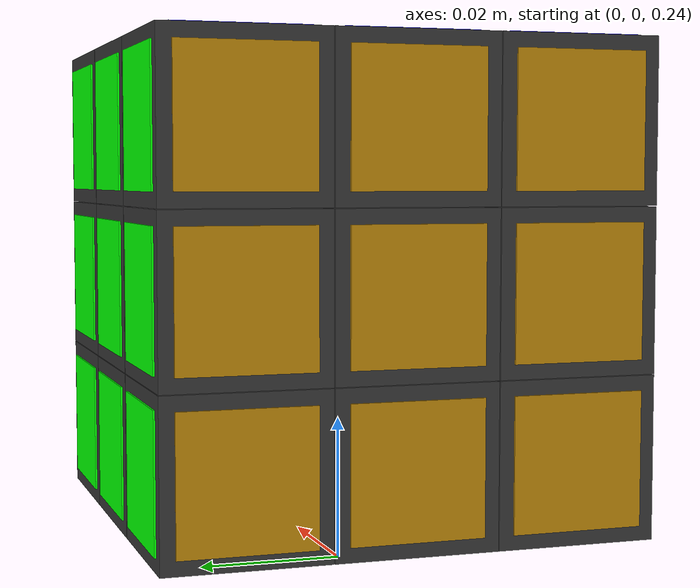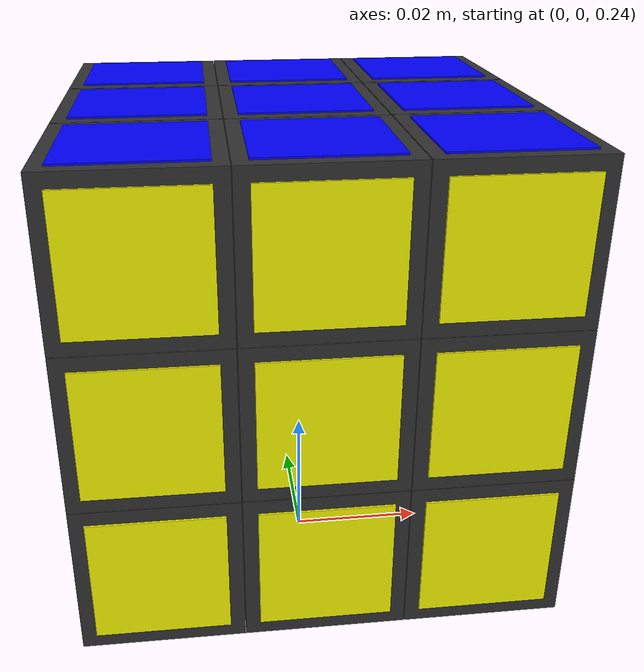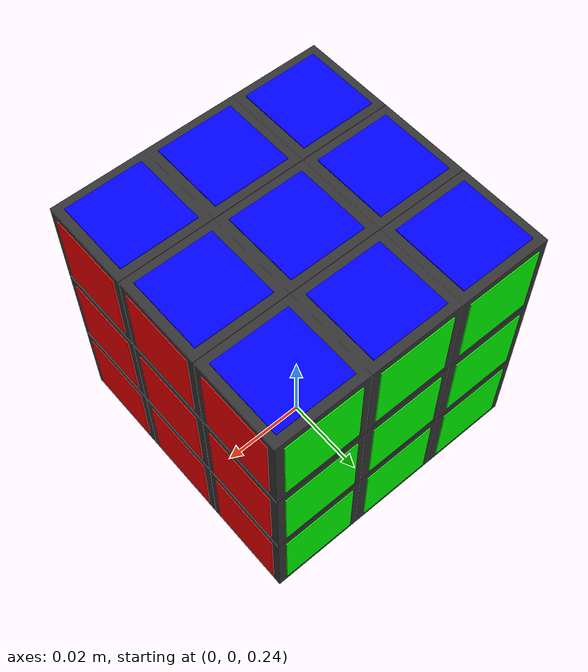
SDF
<?xml version="1.0" encoding="UTF-8"?>
<sdf version="1.5">
  <model name="puzzle_ball_joints">
    <pose>0 0 0.27949999999999997 0 0 0</pose>
    <link name="cubie_1_1_1">
      <pose>0.02144 0.02144 0.02144 0 0 0</pose>
      <self_collide>1</self_collide>
      <inertial>
        <mass>0.05</mass>
        <inertia>
          <ixx>0.04243705701822916</ixx>
          <iyy>0.04243705701822916</iyy>
          <izz>0.04243705701822916</izz>
          <ixy>0</ixy>
          <ixz>0</ixz>
          <iyz>0</iyz>
        </inertia>
      </inertial>
      <collision name="collision">
        <geometry>
          <box>
            <size>0.02133 0.02133 0.02133</size>
          </box>
        </geometry>
      </collision>
      <visual name="visual">
        <transparency>0</transparency>
        <geometry>
          <box>
            <size>0.02133 0.02133 0.02133</size>
          </box>
        </geometry>
        <material>
          <ambient>0.1 0.1 0.1 1</ambient>
          <diffuse>0.2 0.2 0.2 1</diffuse>
          <specular>0.1 0.1 0.1 1</specular>
          <emissive>0 0 0 1</emissive>
        </material>
        <meta>
          <layer>3</layer>
        </meta>
      </visual>
      <visual name='sticker_blue'>
        <transparency>0</transparency>
        <pose>0.0 0.0 0.010665 0 0 0</pose>
        <geometry>
          <box>
            <size>0.0175 0.0175 0.0005</size>
          </box>
        </geometry>
        <material>
          <ambient>0 0 1 1</ambient>
          <diffuse>0 0 1 1</diffuse>
        </material>
        <meta>
          <layer>3</layer>
        </meta>
      </visual>
      <visual name='sticker_red'>
        <transparency>0</transparency>
        <pose>0.010665 0.0 0.0 0 0 0</pose>
        <geometry>
          <box>
            <size>0.0005 0.0175 0.0175</size>
          </box>
        </geometry>
        <material>
          <ambient>1 0 0 1</ambient>
          <diffuse>1 0 0 1</diffuse>
        </material>
        <meta>
          <layer>3</layer>
        </meta>
      </visual>
      <visual name='sticker_green'>
        <transparency>0</transparency>
        <pose>0.0 0.010665 0.0 0 0 0</pose>
        <geometry>
          <box>
            <size>0.0175 0.0005 0.0175</size>
          </box>
        </geometry>
        <material>
          <ambient>0 1 0 1</ambient>
          <diffuse>0 1 0 1</diffuse>
        </material>
        <meta>
          <layer>3</layer>
        </meta>
      </visual>
    </link>
    <joint name="fake_joint_1_1_1" type="ball">
      <parent>cubie_1_1_1</parent>
      <child>cubie_0_0_0</child>
    </joint>
    <link name="cubie_1_1_-1">
      <pose>0.02144 0.02144 -0.02144 0 0 0</pose>
      <self_collide>1</self_collide>
      <inertial>
        <mass>0.05</mass>
        <inertia>
          <ixx>0.04243705701822916</ixx>
          <iyy>0.04243705701822916</iyy>
          <izz>0.04243705701822916</izz>
          <ixy>0</ixy>
          <ixz>0</ixz>
          <iyz>0</iyz>
        </inertia>
      </inertial>
      <collision name="collision">
        <geometry>
          <box>
            <size>0.02133 0.02133 0.02133</size>
          </box>
        </geometry>
      </collision>
      <visual name="visual">
        <transparency>0</transparency>
        <geometry>
          <box>
            <size>0.02133 0.02133 0.02133</size>
          </box>
        </geometry>
        <material>
          <ambient>0.1 0.1 0.1 1</ambient>
          <diffuse>0.2 0.2 0.2 1</diffuse>
          <specular>0.1 0.1 0.1 1</specular>
          <emissive>0 0 0 1</emissive>
        </material>
        <meta>
          <layer>3</layer>
        </meta>
      </visual>
      <visual name='sticker_white'>
        <transparency>0</transparency>
        <pose>0.0 0.0 -0.010665 0 0 0</pose>
        <geometry>
          <box>
            <size>0.0175 0.0175 0.0005</size>
          </box>
        </geometry>
        <material>
          <ambient>1 1 1 1</ambient>
          <diffuse>1 1 1 1</diffuse>
        </material>
        <meta>
          <layer>3</layer>
        </meta>
      </visual>
      <visual name='sticker_red'>
        <transparency>0</transparency>
        <pose>0.010665 0.0 0.0 0 0 0</pose>
        <geometry>
          <box>
            <size>0.0005 0.0175 0.0175</size>
          </box>
        </geometry>
        <material>
          <ambient>1 0 0 1</ambient>
          <diffuse>1 0 0 1</diffuse>
        </material>
        <meta>
          <layer>3</layer>
        </meta>
      </visual>
      <visual name='sticker_green'>
        <transparency>0</transparency>
        <pose>0.0 0.010665 0.0 0 0 0</pose>
        <geometry>
          <box>
            <size>0.0175 0.0005 0.0175</size>
          </box>
        </geometry>
        <material>
          <ambient>0 1 0 1</ambient>
          <diffuse>0 1 0 1</diffuse>
        </material>
        <meta>
          <layer>3</layer>
        </meta>
      </visual>
    </link>
    <joint name="fake_joint_1_1_-1" type="ball">
      <parent>cubie_1_1_-1</parent>
      <child>cubie_0_0_0</child>
    </joint>
    <link name="cubie_1_1_0">
      <pose>0.02144 0.02144 0.0 0 0 0</pose>
      <self_collide>1</self_collide>
      <inertial>
        <mass>0.05</mass>
        <inertia>
          <ixx>0.04243705701822916</ixx>
          <iyy>0.04243705701822916</iyy>
          <izz>0.04243705701822916</izz>
          <ixy>0</ixy>
          <ixz>0</ixz>
          <iyz>0</iyz>
        </inertia>
      </inertial>
      <collision name="collision">
        <geometry>
          <box>
            <size>0.02133 0.02133 0.02133</size>
          </box>
        </geometry>
      </collision>
      <visual name="visual">
        <transparency>0</transparency>
        <geometry>
          <box>
            <size>0.02133 0.02133 0.02133</size>
          </box>
        </geometry>
        <material>
          <ambient>0.1 0.1 0.1 1</ambient>
          <diffuse>0.2 0.2 0.2 1</diffuse>
          <specular>0.1 0.1 0.1 1</specular>
          <emissive>0 0 0 1</emissive>
        </material>
        <meta>
          <layer>2</layer>
        </meta>
      </visual>
      <visual name='sticker_red'>
        <transparency>0</transparency>
        <pose>0.010665 0.0 0.0 0 0 0</pose>
        <geometry>
          <box>
            <size>0.0005 0.0175 0.0175</size>
          </box>
        </geometry>
        <material>
          <ambient>1 0 0 1</ambient>
          <diffuse>1 0 0 1</diffuse>
        </material>
        <meta>
          <layer>2</layer>
        </meta>
      </visual>
      <visual name='sticker_green'>
        <transparency>0</transparency>
        <pose>0.0 0.010665 0.0 0 0 0</pose>
        <geometry>
          <box>
            <size>0.0175 0.0005 0.0175</size>
          </box>
        </geometry>
        <material>
          <ambient>0 1 0 1</ambient>
          <diffuse>0 1 0 1</diffuse>
        </material>
        <meta>
          <layer>2</layer>
        </meta>
      </visual>
    </link>
    <joint name="fake_joint_1_1_0" type="ball">
      <parent>cubie_1_1_0</parent>
      <child>cubie_0_0_0</child>
    </joint>
    <link name="cubie_1_-1_1">
      <pose>0.02144 -0.02144 0.02144 0 0 0</pose>
      <self_collide>1</self_collide>
      <inertial>
        <mass>0.05</mass>
        <inertia>
          <ixx>0.04243705701822916</ixx>
          <iyy>0.04243705701822916</iyy>
          <izz>0.04243705701822916</izz>
          <ixy>0</ixy>
          <ixz>0</ixz>
          <iyz>0</iyz>
        </inertia>
      </inertial>
      <collision name="collision">
        <geometry>
          <box>
            <size>0.02133 0.02133 0.02133</size>
          </box>
        </geometry>
      </collision>
      <visual name="visual">
        <transparency>0</transparency>
        <geometry>
          <box>
            <size>0.02133 0.02133 0.02133</size>
          </box>
        </geometry>
        <material>
          <ambient>0.1 0.1 0.1 1</ambient>
          <diffuse>0.2 0.2 0.2 1</diffuse>
          <specular>0.1 0.1 0.1 1</specular>
          <emissive>0 0 0 1</emissive>
        </material>
        <meta>
          <layer>3</layer>
        </meta>
      </visual>
      <visual name='sticker_blue'>
        <transparency>0</transparency>
        <pose>0.0 0.0 0.010665 0 0 0</pose>
        <geometry>
          <box>
            <size>0.0175 0.0175 0.0005</size>
          </box>
        </geometry>
        <material>
          <ambient>0 0 1 1</ambient>
          <diffuse>0 0 1 1</diffuse>
        </material>
        <meta>
          <layer>3</layer>
        </meta>
      </visual>
      <visual name='sticker_red'>
        <transparency>0</transparency>
        <pose>0.010665 0.0 0.0 0 0 0</pose>
        <geometry>
          <box>
            <size>0.0005 0.0175 0.0175</size>
          </box>
        </geometry>
        <material>
          <ambient>1 0 0 1</ambient>
          <diffuse>1 0 0 1</diffuse>
        </material>
        <meta>
          <layer>3</layer>
        </meta>
      </visual>
      <visual name='sticker_yellow'>
        <transparency>0</transparency>
        <pose>0.0 -0.010665 0.0 0 0 0</pose>
        <geometry>
          <box>
            <size>0.0175 0.0005 0.0175</size>
          </box>
        </geometry>
        <material>
          <ambient>1 1 0 1</ambient>
          <diffuse>1 1 0 1</diffuse>
        </material>
        <meta>
          <layer>3</layer>
        </meta>
      </visual>
    </link>
    <joint name="fake_joint_1_-1_1" type="ball">
      <parent>cubie_1_-1_1</parent>
      <child>cubie_0_0_0</child>
    </joint>
    <link name="cubie_1_-1_-1">
      <pose>0.02144 -0.02144 -0.02144 0 0 0</pose>
      <self_collide>1</self_collide>
      <inertial>
        <mass>0.05</mass>
        <inertia>
          <ixx>0.04243705701822916</ixx>
          <iyy>0.04243705701822916</iyy>
          <izz>0.04243705701822916</izz>
          <ixy>0</ixy>
          <ixz>0</ixz>
          <iyz>0</iyz>
        </inertia>
      </inertial>
      <collision name="collision">
        <geometry>
          <box>
            <size>0.02133 0.02133 0.02133</size>
          </box>
        </geometry>
      </collision>
      <visual name="visual">
        <transparency>0</transparency>
        <geometry>
          <box>
            <size>0.02133 0.02133 0.02133</size>
          </box>
        </geometry>
        <material>
          <ambient>0.1 0.1 0.1 1</ambient>
          <diffuse>0.2 0.2 0.2 1</diffuse>
          <specular>0.1 0.1 0.1 1</specular>
          <emissive>0 0 0 1</emissive>
        </material>
        <meta>
          <layer>3</layer>
        </meta>
      </visual>
      <visual name='sticker_white'>
        <transparency>0</transparency>
        <pose>0.0 0.0 -0.010665 0 0 0</pose>
        <geometry>
          <box>
            <size>0.0175 0.0175 0.0005</size>
          </box>
        </geometry>
        <material>
          <ambient>1 1 1 1</ambient>
          <diffuse>1 1 1 1</diffuse>
        </material>
        <meta>
          <layer>3</layer>
        </meta>
      </visual>
      <visual name='sticker_red'>
        <transparency>0</transparency>
        <pose>0.010665 0.0 0.0 0 0 0</pose>
        <geometry>
          <box>
            <size>0.0005 0.0175 0.0175</size>
          </box>
        </geometry>
        <material>
          <ambient>1 0 0 1</ambient>
          <diffuse>1 0 0 1</diffuse>
        </material>
        <meta>
          <layer>3</layer>
        </meta>
      </visual>
      <visual name='sticker_yellow'>
        <transparency>0</transparency>
        <pose>0.0 -0.010665 0.0 0 0 0</pose>
        <geometry>
          <box>
            <size>0.0175 0.0005 0.0175</size>
          </box>
        </geometry>
        <material>
          <ambient>1 1 0 1</ambient>
          <diffuse>1 1 0 1</diffuse>
        </material>
        <meta>
          <layer>3</layer>
        </meta>
      </visual>
    </link>
    <joint name="fake_joint_1_-1_-1" type="ball">
      <parent>cubie_1_-1_-1</parent>
      <child>cubie_0_0_0</child>
    </joint>
    <link name="cubie_1_-1_0">
      <pose>0.02144 -0.02144 0.0 0 0 0</pose>
      <self_collide>1</self_collide>
      <inertial>
        <mass>0.05</mass>
        <inertia>
          <ixx>0.04243705701822916</ixx>
          <iyy>0.04243705701822916</iyy>
          <izz>0.04243705701822916</izz>
          <ixy>0</ixy>
          <ixz>0</ixz>
          <iyz>0</iyz>
        </inertia>
      </inertial>
      <collision name="collision">
        <geometry>
          <box>
            <size>0.02133 0.02133 0.02133</size>
          </box>
        </geometry>
      </collision>
      <visual name="visual">
        <transparency>0</transparency>
        <geometry>
          <box>
            <size>0.02133 0.02133 0.02133</size>
          </box>
        </geometry>
        <material>
          <ambient>0.1 0.1 0.1 1</ambient>
          <diffuse>0.2 0.2 0.2 1</diffuse>
          <specular>0.1 0.1 0.1 1</specular>
          <emissive>0 0 0 1</emissive>
        </material>
        <meta>
          <layer>2</layer>
        </meta>
      </visual>
      <visual name='sticker_red'>
        <transparency>0</transparency>
        <pose>0.010665 0.0 0.0 0 0 0</pose>
        <geometry>
          <box>
            <size>0.0005 0.0175 0.0175</size>
          </box>
        </geometry>
        <material>
          <ambient>1 0 0 1</ambient>
          <diffuse>1 0 0 1</diffuse>
        </material>
        <meta>
          <layer>2</layer>
        </meta>
      </visual>
      <visual name='sticker_yellow'>
        <transparency>0</transparency>
        <pose>0.0 -0.010665 0.0 0 0 0</pose>
        <geometry>
          <box>
            <size>0.0175 0.0005 0.0175</size>
          </box>
        </geometry>
        <material>
          <ambient>1 1 0 1</ambient>
          <diffuse>1 1 0 1</diffuse>
        </material>
        <meta>
          <layer>2</layer>
        </meta>
      </visual>
    </link>
    <joint name="fake_joint_1_-1_0" type="ball">
      <parent>cubie_1_-1_0</parent>
      <child>cubie_0_0_0</child>
    </joint>
    <link name="cubie_1_0_1">
      <pose>0.02144 0.0 0.02144 0 0 0</pose>
      <self_collide>1</self_collide>
      <inertial>
        <mass>0.05</mass>
        <inertia>
          <ixx>0.04243705701822916</ixx>
          <iyy>0.04243705701822916</iyy>
          <izz>0.04243705701822916</izz>
          <ixy>0</ixy>
          <ixz>0</ixz>
          <iyz>0</iyz>
        </inertia>
      </inertial>
      <collision name="collision">
        <geometry>
          <box>
            <size>0.02133 0.02133 0.02133</size>
          </box>
        </geometry>
      </collision>
      <visual name="visual">
        <transparency>0</transparency>
        <geometry>
          <box>
            <size>0.02133 0.02133 0.02133</size>
          </box>
        </geometry>
        <material>
          <ambient>0.1 0.1 0.1 1</ambient>
          <diffuse>0.2 0.2 0.2 1</diffuse>
          <specular>0.1 0.1 0.1 1</specular>
          <emissive>0 0 0 1</emissive>
        </material>
        <meta>
          <layer>2</layer>
        </meta>
      </visual>
      <visual name='sticker_blue'>
        <transparency>0</transparency>
        <pose>0.0 0.0 0.010665 0 0 0</pose>
        <geometry>
          <box>
            <size>0.0175 0.0175 0.0005</size>
          </box>
        </geometry>
        <material>
          <ambient>0 0 1 1</ambient>
          <diffuse>0 0 1 1</diffuse>
        </material>
        <meta>
          <layer>2</layer>
        </meta>
      </visual>
      <visual name='sticker_red'>
        <transparency>0</transparency>
        <pose>0.010665 0.0 0.0 0 0 0</pose>
        <geometry>
          <box>
            <size>0.0005 0.0175 0.0175</size>
          </box>
        </geometry>
        <material>
          <ambient>1 0 0 1</ambient>
          <diffuse>1 0 0 1</diffuse>
        </material>
        <meta>
          <layer>2</layer>
        </meta>
      </visual>
    </link>
    <joint name="fake_joint_1_0_1" type="ball">
      <parent>cubie_1_0_1</parent>
      <child>cubie_0_0_0</child>
    </joint>
    <link name="cubie_1_0_-1">
      <pose>0.02144 0.0 -0.02144 0 0 0</pose>
      <self_collide>1</self_collide>
      <inertial>
        <mass>0.05</mass>
        <inertia>
          <ixx>0.04243705701822916</ixx>
          <iyy>0.04243705701822916</iyy>
          <izz>0.04243705701822916</izz>
          <ixy>0</ixy>
          <ixz>0</ixz>
          <iyz>0</iyz>
        </inertia>
      </inertial>
      <collision name="collision">
        <geometry>
          <box>
            <size>0.02133 0.02133 0.02133</size>
          </box>
        </geometry>
      </collision>
      <visual name="visual">
        <transparency>0</transparency>
        <geometry>
          <box>
            <size>0.02133 0.02133 0.02133</size>
          </box>
        </geometry>
        <material>
          <ambient>0.1 0.1 0.1 1</ambient>
          <diffuse>0.2 0.2 0.2 1</diffuse>
          <specular>0.1 0.1 0.1 1</specular>
          <emissive>0 0 0 1</emissive>
        </material>
        <meta>
          <layer>2</layer>
        </meta>
      </visual>
      <visual name='sticker_white'>
        <transparency>0</transparency>
        <pose>0.0 0.0 -0.010665 0 0 0</pose>
        <geometry>
          <box>
            <size>0.0175 0.0175 0.0005</size>
          </box>
        </geometry>
        <material>
          <ambient>1 1 1 1</ambient>
          <diffuse>1 1 1 1</diffuse>
        </material>
        <meta>
          <layer>2</layer>
        </meta>
      </visual>
      <visual name='sticker_red'>
        <transparency>0</transparency>
        <pose>0.010665 0.0 0.0 0 0 0</pose>
        <geometry>
          <box>
            <size>0.0005 0.0175 0.0175</size>
          </box>
        </geometry>
        <material>
          <ambient>1 0 0 1</ambient>
          <diffuse>1 0 0 1</diffuse>
        </material>
        <meta>
          <layer>2</layer>
        </meta>
      </visual>
    </link>
    <joint name="fake_joint_1_0_-1" type="ball">
      <parent>cubie_1_0_-1</parent>
      <child>cubie_0_0_0</child>
    </joint>
    <link name="cubie_1_0_0">
      <pose>0.02144 0.0 0.0 0 0 0</pose>
      <self_collide>1</self_collide>
      <inertial>
        <mass>0.05</mass>
        <inertia>
          <ixx>0.04243705701822916</ixx>
          <iyy>0.04243705701822916</iyy>
          <izz>0.04243705701822916</izz>
          <ixy>0</ixy>
          <ixz>0</ixz>
          <iyz>0</iyz>
        </inertia>
      </inertial>
      <collision name="collision">
        <geometry>
          <box>
            <size>0.02133 0.02133 0.02133</size>
          </box>
        </geometry>
      </collision>
      <visual name="visual">
        <transparency>0</transparency>
        <geometry>
          <box>
            <size>0.02133 0.02133 0.02133</size>
          </box>
        </geometry>
        <material>
          <ambient>0.1 0.1 0.1 1</ambient>
          <diffuse>0.2 0.2 0.2 1</diffuse>
          <specular>0.1 0.1 0.1 1</specular>
          <emissive>0 0 0 1</emissive>
        </material>
        <meta>
          <layer>3</layer>
        </meta>
      </visual>
      <visual name='sticker_red'>
        <transparency>0</transparency>
        <pose>0.010665 0.0 0.0 0 0 0</pose>
        <geometry>
          <box>
            <size>0.0005 0.0175 0.0175</size>
          </box>
        </geometry>
        <material>
          <ambient>1 0 0 1</ambient>
          <diffuse>1 0 0 1</diffuse>
        </material>
        <meta>
          <layer>3</layer>
        </meta>
      </visual>
    </link>
    <joint name="center_joint_1_0_0" type="fixed">
      <parent>cubie_0_0_0</parent>
      <child>cubie_1_0_0</child>
    </joint>
    <link name="cubie_-1_1_1">
      <pose>-0.02144 0.02144 0.02144 0 0 0</pose>
      <self_collide>1</self_collide>
      <inertial>
        <mass>0.05</mass>
        <inertia>
          <ixx>0.04243705701822916</ixx>
          <iyy>0.04243705701822916</iyy>
          <izz>0.04243705701822916</izz>
          <ixy>0</ixy>
          <ixz>0</ixz>
          <iyz>0</iyz>
        </inertia>
      </inertial>
      <collision name="collision">
        <geometry>
          <box>
            <size>0.02133 0.02133 0.02133</size>
          </box>
        </geometry>
      </collision>
      <visual name="visual">
        <transparency>0</transparency>
        <geometry>
          <box>
            <size>0.02133 0.02133 0.02133</size>
          </box>
        </geometry>
        <material>
          <ambient>0.1 0.1 0.1 1</ambient>
          <diffuse>0.2 0.2 0.2 1</diffuse>
          <specular>0.1 0.1 0.1 1</specular>
          <emissive>0 0 0 1</emissive>
        </material>
        <meta>
          <layer>3</layer>
        </meta>
      </visual>
      <visual name='sticker_blue'>
        <transparency>0</transparency>
        <pose>0.0 0.0 0.010665 0 0 0</pose>
        <geometry>
          <box>
            <size>0.0175 0.0175 0.0005</size>
          </box>
        </geometry>
        <material>
          <ambient>0 0 1 1</ambient>
          <diffuse>0 0 1 1</diffuse>
        </material>
        <meta>
          <layer>3</layer>
        </meta>
      </visual>
      <visual name='sticker_orange'>
        <transparency>0</transparency>
        <pose>-0.010665 0.0 0.0 0 0 0</pose>
        <geometry>
          <box>
            <size>0.0005 0.0175 0.0175</size>
          </box>
        </geometry>
        <material>
          <ambient>0.7 0.5 0.03 1</ambient>
          <diffuse>0.7 0.5 0.03 1</diffuse>
        </material>
        <meta>
          <layer>3</layer>
        </meta>
      </visual>
      <visual name='sticker_green'>
        <transparency>0</transparency>
        <pose>0.0 0.010665 0.0 0 0 0</pose>
        <geometry>
          <box>
            <size>0.0175 0.0005 0.0175</size>
          </box>
        </geometry>
        <material>
          <ambient>0 1 0 1</ambient>
          <diffuse>0 1 0 1</diffuse>
        </material>
        <meta>
          <layer>3</layer>
        </meta>
      </visual>
    </link>
    <joint name="fake_joint_-1_1_1" type="ball">
      <parent>cubie_-1_1_1</parent>
      <child>cubie_0_0_0</child>
    </joint>
    <link name="cubie_-1_1_-1">
      <pose>-0.02144 0.02144 -0.02144 0 0 0</pose>
      <self_collide>1</self_collide>
      <inertial>
        <mass>0.05</mass>
        <inertia>
          <ixx>0.04243705701822916</ixx>
          <iyy>0.04243705701822916</iyy>
          <izz>0.04243705701822916</izz>
          <ixy>0</ixy>
          <ixz>0</ixz>
          <iyz>0</iyz>
        </inertia>
      </inertial>
      <collision name="collision">
        <geometry>
          <box>
            <size>0.02133 0.02133 0.02133</size>
          </box>
        </geometry>
      </collision>
      <visual name="visual">
        <transparency>0</transparency>
        <geometry>
          <box>
            <size>0.02133 0.02133 0.02133</size>
          </box>
        </geometry>
        <material>
          <ambient>0.1 0.1 0.1 1</ambient>
          <diffuse>0.2 0.2 0.2 1</diffuse>
          <specular>0.1 0.1 0.1 1</specular>
          <emissive>0 0 0 1</emissive>
        </material>
        <meta>
          <layer>3</layer>
        </meta>
      </visual>
      <visual name='sticker_white'>
        <transparency>0</transparency>
        <pose>0.0 0.0 -0.010665 0 0 0</pose>
        <geometry>
          <box>
            <size>0.0175 0.0175 0.0005</size>
          </box>
        </geometry>
        <material>
          <ambient>1 1 1 1</ambient>
          <diffuse>1 1 1 1</diffuse>
        </material>
        <meta>
          <layer>3</layer>
        </meta>
      </visual>
      <visual name='sticker_orange'>
        <transparency>0</transparency>
        <pose>-0.010665 0.0 0.0 0 0 0</pose>
        <geometry>
          <box>
            <size>0.0005 0.0175 0.0175</size>
          </box>
        </geometry>
        <material>
          <ambient>0.7 0.5 0.03 1</ambient>
          <diffuse>0.7 0.5 0.03 1</diffuse>
        </material>
        <meta>
          <layer>3</layer>
        </meta>
      </visual>
      <visual name='sticker_green'>
        <transparency>0</transparency>
        <pose>0.0 0.010665 0.0 0 0 0</pose>
        <geometry>
          <box>
            <size>0.0175 0.0005 0.0175</size>
          </box>
        </geometry>
        <material>
          <ambient>0 1 0 1</ambient>
          <diffuse>0 1 0 1</diffuse>
        </material>
        <meta>
          <layer>3</layer>
        </meta>
      </visual>
    </link>
    <joint name="fake_joint_-1_1_-1" type="ball">
      <parent>cubie_-1_1_-1</parent>
      <child>cubie_0_0_0</child>
    </joint>
    <link name="cubie_-1_1_0">
      <pose>-0.02144 0.02144 0.0 0 0 0</pose>
      <self_collide>1</self_collide>
      <inertial>
        <mass>0.05</mass>
        <inertia>
          <ixx>0.04243705701822916</ixx>
          <iyy>0.04243705701822916</iyy>
          <izz>0.04243705701822916</izz>
          <ixy>0</ixy>
          <ixz>0</ixz>
          <iyz>0</iyz>
        </inertia>
      </inertial>
      <collision name="collision">
        <geometry>
          <box>
            <size>0.02133 0.02133 0.02133</size>
          </box>
        </geometry>
      </collision>
      <visual name="visual">
        <transparency>0</transparency>
        <geometry>
          <box>
            <size>0.02133 0.02133 0.02133</size>
          </box>
        </geometry>
        <material>
          <ambient>0.1 0.1 0.1 1</ambient>
          <diffuse>0.2 0.2 0.2 1</diffuse>
          <specular>0.1 0.1 0.1 1</specular>
          <emissive>0 0 0 1</emissive>
        </material>
        <meta>
          <layer>2</layer>
        </meta>
      </visual>
      <visual name='sticker_orange'>
        <transparency>0</transparency>
        <pose>-0.010665 0.0 0.0 0 0 0</pose>
        <geometry>
          <box>
            <size>0.0005 0.0175 0.0175</size>
          </box>
        </geometry>
        <material>
          <ambient>0.7 0.5 0.03 1</ambient>
          <diffuse>0.7 0.5 0.03 1</diffuse>
        </material>
        <meta>
          <layer>2</layer>
        </meta>
      </visual>
      <visual name='sticker_green'>
        <transparency>0</transparency>
        <pose>0.0 0.010665 0.0 0 0 0</pose>
        <geometry>
          <box>
            <size>0.0175 0.0005 0.0175</size>
          </box>
        </geometry>
        <material>
          <ambient>0 1 0 1</ambient>
          <diffuse>0 1 0 1</diffuse>
        </material>
        <meta>
          <layer>2</layer>
        </meta>
      </visual>
    </link>
    <joint name="fake_joint_-1_1_0" type="ball">
      <parent>cubie_-1_1_0</parent>
      <child>cubie_0_0_0</child>
    </joint>
    <link name="cubie_-1_-1_1">
      <pose>-0.02144 -0.02144 0.02144 0 0 0</pose>
      <self_collide>1</self_collide>
      <inertial>
        <mass>0.05</mass>
        <inertia>
          <ixx>0.04243705701822916</ixx>
          <iyy>0.04243705701822916</iyy>
          <izz>0.04243705701822916</izz>
          <ixy>0</ixy>
          <ixz>0</ixz>
          <iyz>0</iyz>
        </inertia>
      </inertial>
      <collision name="collision">
        <geometry>
          <box>
            <size>0.02133 0.02133 0.02133</size>
          </box>
        </geometry>
      </collision>
      <visual name="visual">
        <transparency>0</transparency>
        <geometry>
          <box>
            <size>0.02133 0.02133 0.02133</size>
          </box>
        </geometry>
        <material>
          <ambient>0.1 0.1 0.1 1</ambient>
          <diffuse>0.2 0.2 0.2 1</diffuse>
          <specular>0.1 0.1 0.1 1</specular>
          <emissive>0 0 0 1</emissive>
        </material>
        <meta>
          <layer>3</layer>
        </meta>
      </visual>
      <visual name='sticker_blue'>
        <transparency>0</transparency>
        <pose>0.0 0.0 0.010665 0 0 0</pose>
        <geometry>
          <box>
            <size>0.0175 0.0175 0.0005</size>
          </box>
        </geometry>
        <material>
          <ambient>0 0 1 1</ambient>
          <diffuse>0 0 1 1</diffuse>
        </material>
        <meta>
          <layer>3</layer>
        </meta>
      </visual>
      <visual name='sticker_orange'>
        <transparency>0</transparency>
        <pose>-0.010665 0.0 0.0 0 0 0</pose>
        <geometry>
          <box>
            <size>0.0005 0.0175 0.0175</size>
          </box>
        </geometry>
        <material>
          <ambient>0.7 0.5 0.03 1</ambient>
          <diffuse>0.7 0.5 0.03 1</diffuse>
        </material>
        <meta>
          <layer>3</layer>
        </meta>
      </visual>
      <visual name='sticker_yellow'>
        <transparency>0</transparency>
        <pose>0.0 -0.010665 0.0 0 0 0</pose>
        <geometry>
          <box>
            <size>0.0175 0.0005 0.0175</size>
          </box>
        </geometry>
        <material>
          <ambient>1 1 0 1</ambient>
          <diffuse>1 1 0 1</diffuse>
        </material>
        <meta>
          <layer>3</layer>
        </meta>
      </visual>
    </link>
    <joint name="fake_joint_-1_-1_1" type="ball">
      <parent>cubie_-1_-1_1</parent>
      <child>cubie_0_0_0</child>
    </joint>
    <link name="cubie_-1_-1_-1">
      <pose>-0.02144 -0.02144 -0.02144 0 0 0</pose>
      <self_collide>1</self_collide>
      <inertial>
        <mass>0.05</mass>
        <inertia>
          <ixx>0.04243705701822916</ixx>
          <iyy>0.04243705701822916</iyy>
          <izz>0.04243705701822916</izz>
          <ixy>0</ixy>
          <ixz>0</ixz>
          <iyz>0</iyz>
        </inertia>
      </inertial>
      <collision name="collision">
        <geometry>
          <box>
            <size>0.02133 0.02133 0.02133</size>
          </box>
        </geometry>
      </collision>
      <visual name="visual">
        <transparency>0</transparency>
        <geometry>
          <box>
            <size>0.02133 0.02133 0.02133</size>
          </box>
        </geometry>
        <material>
          <ambient>0.1 0.1 0.1 1</ambient>
          <diffuse>0.2 0.2 0.2 1</diffuse>
          <specular>0.1 0.1 0.1 1</specular>
          <emissive>0 0 0 1</emissive>
        </material>
        <meta>
          <layer>3</layer>
        </meta>
      </visual>
      <visual name='sticker_white'>
        <transparency>0</transparency>
        <pose>0.0 0.0 -0.010665 0 0 0</pose>
        <geometry>
          <box>
            <size>0.0175 0.0175 0.0005</size>
          </box>
        </geometry>
        <material>
          <ambient>1 1 1 1</ambient>
          <diffuse>1 1 1 1</diffuse>
        </material>
        <meta>
          <layer>3</layer>
        </meta>
      </visual>
      <visual name='sticker_orange'>
        <transparency>0</transparency>
        <pose>-0.010665 0.0 0.0 0 0 0</pose>
        <geometry>
          <box>
            <size>0.0005 0.0175 0.0175</size>
          </box>
        </geometry>
        <material>
          <ambient>0.7 0.5 0.03 1</ambient>
          <diffuse>0.7 0.5 0.03 1</diffuse>
        </material>
        <meta>
          <layer>3</layer>
        </meta>
      </visual>
      <visual name='sticker_yellow'>
        <transparency>0</transparency>
        <pose>0.0 -0.010665 0.0 0 0 0</pose>
        <geometry>
          <box>
            <size>0.0175 0.0005 0.0175</size>
          </box>
        </geometry>
        <material>
          <ambient>1 1 0 1</ambient>
          <diffuse>1 1 0 1</diffuse>
        </material>
        <meta>
          <layer>3</layer>
        </meta>
      </visual>
    </link>
    <joint name="fake_joint_-1_-1_-1" type="ball">
      <parent>cubie_-1_-1_-1</parent>
      <child>cubie_0_0_0</child>
    </joint>
    <link name="cubie_-1_-1_0">
      <pose>-0.02144 -0.02144 0.0 0 0 0</pose>
      <self_collide>1</self_collide>
      <inertial>
        <mass>0.05</mass>
        <inertia>
          <ixx>0.04243705701822916</ixx>
          <iyy>0.04243705701822916</iyy>
          <izz>0.04243705701822916</izz>
          <ixy>0</ixy>
          <ixz>0</ixz>
          <iyz>0</iyz>
        </inertia>
      </inertial>
      <collision name="collision">
        <geometry>
          <box>
            <size>0.02133 0.02133 0.02133</size>
          </box>
        </geometry>
      </collision>
      <visual name="visual">
        <transparency>0</transparency>
        <geometry>
          <box>
            <size>0.02133 0.02133 0.02133</size>
          </box>
        </geometry>
        <material>
          <ambient>0.1 0.1 0.1 1</ambient>
          <diffuse>0.2 0.2 0.2 1</diffuse>
          <specular>0.1 0.1 0.1 1</specular>
          <emissive>0 0 0 1</emissive>
        </material>
        <meta>
          <layer>2</layer>
        </meta>
      </visual>
      <visual name='sticker_orange'>
        <transparency>0</transparency>
        <pose>-0.010665 0.0 0.0 0 0 0</pose>
        <geometry>
          <box>
            <size>0.0005 0.0175 0.0175</size>
          </box>
        </geometry>
        <material>
          <ambient>0.7 0.5 0.03 1</ambient>
          <diffuse>0.7 0.5 0.03 1</diffuse>
        </material>
        <meta>
          <layer>2</layer>
        </meta>
      </visual>
      <visual name='sticker_yellow'>
        <transparency>0</transparency>
        <pose>0.0 -0.010665 0.0 0 0 0</pose>
        <geometry>
          <box>
            <size>0.0175 0.0005 0.0175</size>
          </box>
        </geometry>
        <material>
          <ambient>1 1 0 1</ambient>
          <diffuse>1 1 0 1</diffuse>
        </material>
        <meta>
          <layer>2</layer>
        </meta>
      </visual>
    </link>
    <joint name="fake_joint_-1_-1_0" type="ball">
      <parent>cubie_-1_-1_0</parent>
      <child>cubie_0_0_0</child>
    </joint>
    <link name="cubie_-1_0_1">
      <pose>-0.02144 0.0 0.02144 0 0 0</pose>
      <self_collide>1</self_collide>
      <inertial>
        <mass>0.05</mass>
        <inertia>
          <ixx>0.04243705701822916</ixx>
          <iyy>0.04243705701822916</iyy>
          <izz>0.04243705701822916</izz>
          <ixy>0</ixy>
          <ixz>0</ixz>
          <iyz>0</iyz>
        </inertia>
      </inertial>
      <collision name="collision">
        <geometry>
          <box>
            <size>0.02133 0.02133 0.02133</size>
          </box>
        </geometry>
      </collision>
      <visual name="visual">
        <transparency>0</transparency>
        <geometry>
          <box>
            <size>0.02133 0.02133 0.02133</size>
          </box>
        </geometry>
        <material>
          <ambient>0.1 0.1 0.1 1</ambient>
          <diffuse>0.2 0.2 0.2 1</diffuse>
          <specular>0.1 0.1 0.1 1</specular>
          <emissive>0 0 0 1</emissive>
        </material>
        <meta>
          <layer>2</layer>
        </meta>
      </visual>
      <visual name='sticker_blue'>
        <transparency>0</transparency>
        <pose>0.0 0.0 0.010665 0 0 0</pose>
        <geometry>
          <box>
            <size>0.0175 0.0175 0.0005</size>
          </box>
        </geometry>
        <material>
          <ambient>0 0 1 1</ambient>
          <diffuse>0 0 1 1</diffuse>
        </material>
        <meta>
          <layer>2</layer>
        </meta>
      </visual>
      <visual name='sticker_orange'>
        <transparency>0</transparency>
        <pose>-0.010665 0.0 0.0 0 0 0</pose>
        <geometry>
          <box>
            <size>0.0005 0.0175 0.0175</size>
          </box>
        </geometry>
        <material>
          <ambient>0.7 0.5 0.03 1</ambient>
          <diffuse>0.7 0.5 0.03 1</diffuse>
        </material>
        <meta>
          <layer>2</layer>
        </meta>
      </visual>
    </link>
    <joint name="fake_joint_-1_0_1" type="ball">
      <parent>cubie_-1_0_1</parent>
      <child>cubie_0_0_0</child>
    </joint>
    <link name="cubie_-1_0_-1">
      <pose>-0.02144 0.0 -0.02144 0 0 0</pose>
      <self_collide>1</self_collide>
      <inertial>
        <mass>0.05</mass>
        <inertia>
          <ixx>0.04243705701822916</ixx>
          <iyy>0.04243705701822916</iyy>
          <izz>0.04243705701822916</izz>
          <ixy>0</ixy>
          <ixz>0</ixz>
          <iyz>0</iyz>
        </inertia>
      </inertial>
      <collision name="collision">
        <geometry>
          <box>
            <size>0.02133 0.02133 0.02133</size>
          </box>
        </geometry>
      </collision>
      <visual name="visual">
        <transparency>0</transparency>
        <geometry>
          <box>
            <size>0.02133 0.02133 0.02133</size>
          </box>
        </geometry>
        <material>
          <ambient>0.1 0.1 0.1 1</ambient>
          <diffuse>0.2 0.2 0.2 1</diffuse>
          <specular>0.1 0.1 0.1 1</specular>
          <emissive>0 0 0 1</emissive>
        </material>
        <meta>
          <layer>2</layer>
        </meta>
      </visual>
      <visual name='sticker_white'>
        <transparency>0</transparency>
        <pose>0.0 0.0 -0.010665 0 0 0</pose>
        <geometry>
          <box>
            <size>0.0175 0.0175 0.0005</size>
          </box>
        </geometry>
        <material>
          <ambient>1 1 1 1</ambient>
          <diffuse>1 1 1 1</diffuse>
        </material>
        <meta>
          <layer>2</layer>
        </meta>
      </visual>
      <visual name='sticker_orange'>
        <transparency>0</transparency>
        <pose>-0.010665 0.0 0.0 0 0 0</pose>
        <geometry>
          <box>
            <size>0.0005 0.0175 0.0175</size>
          </box>
        </geometry>
        <material>
          <ambient>0.7 0.5 0.03 1</ambient>
          <diffuse>0.7 0.5 0.03 1</diffuse>
        </material>
        <meta>
          <layer>2</layer>
        </meta>
      </visual>
    </link>
    <joint name="fake_joint_-1_0_-1" type="ball">
      <parent>cubie_-1_0_-1</parent>
      <child>cubie_0_0_0</child>
    </joint>
    <link name="cubie_-1_0_0">
      <pose>-0.02144 0.0 0.0 0 0 0</pose>
      <self_collide>1</self_collide>
      <inertial>
        <mass>0.05</mass>
        <inertia>
          <ixx>0.04243705701822916</ixx>
          <iyy>0.04243705701822916</iyy>
          <izz>0.04243705701822916</izz>
          <ixy>0</ixy>
          <ixz>0</ixz>
          <iyz>0</iyz>
        </inertia>
      </inertial>
      <collision name="collision">
        <geometry>
          <box>
            <size>0.02133 0.02133 0.02133</size>
          </box>
        </geometry>
      </collision>
      <visual name="visual">
        <transparency>0</transparency>
        <geometry>
          <box>
            <size>0.02133 0.02133 0.02133</size>
          </box>
        </geometry>
        <material>
          <ambient>0.1 0.1 0.1 1</ambient>
          <diffuse>0.2 0.2 0.2 1</diffuse>
          <specular>0.1 0.1 0.1 1</specular>
          <emissive>0 0 0 1</emissive>
        </material>
        <meta>
          <layer>3</layer>
        </meta>
      </visual>
      <visual name='sticker_orange'>
        <transparency>0</transparency>
        <pose>-0.010665 0.0 0.0 0 0 0</pose>
        <geometry>
          <box>
            <size>0.0005 0.0175 0.0175</size>
          </box>
        </geometry>
        <material>
          <ambient>0.7 0.5 0.03 1</ambient>
          <diffuse>0.7 0.5 0.03 1</diffuse>
        </material>
        <meta>
          <layer>3</layer>
        </meta>
      </visual>
    </link>
    <joint name="center_joint_-1_0_0" type="fixed">
      <parent>cubie_0_0_0</parent>
      <child>cubie_-1_0_0</child>
    </joint>
    <link name="cubie_0_1_1">
      <pose>0.0 0.02144 0.02144 0 0 0</pose>
      <self_collide>1</self_collide>
      <inertial>
        <mass>0.05</mass>
        <inertia>
          <ixx>0.04243705701822916</ixx>
          <iyy>0.04243705701822916</iyy>
          <izz>0.04243705701822916</izz>
          <ixy>0</ixy>
          <ixz>0</ixz>
          <iyz>0</iyz>
        </inertia>
      </inertial>
      <collision name="collision">
        <geometry>
          <box>
            <size>0.02133 0.02133 0.02133</size>
          </box>
        </geometry>
      </collision>
      <visual name="visual">
        <transparency>0</transparency>
        <geometry>
          <box>
            <size>0.02133 0.02133 0.02133</size>
          </box>
        </geometry>
        <material>
          <ambient>0.1 0.1 0.1 1</ambient>
          <diffuse>0.2 0.2 0.2 1</diffuse>
          <specular>0.1 0.1 0.1 1</specular>
          <emissive>0 0 0 1</emissive>
        </material>
        <meta>
          <layer>2</layer>
        </meta>
      </visual>
      <visual name='sticker_blue'>
        <transparency>0</transparency>
        <pose>0.0 0.0 0.010665 0 0 0</pose>
        <geometry>
          <box>
            <size>0.0175 0.0175 0.0005</size>
          </box>
        </geometry>
        <material>
          <ambient>0 0 1 1</ambient>
          <diffuse>0 0 1 1</diffuse>
        </material>
        <meta>
          <layer>2</layer>
        </meta>
      </visual>
      <visual name='sticker_green'>
        <transparency>0</transparency>
        <pose>0.0 0.010665 0.0 0 0 0</pose>
        <geometry>
          <box>
            <size>0.0175 0.0005 0.0175</size>
          </box>
        </geometry>
        <material>
          <ambient>0 1 0 1</ambient>
          <diffuse>0 1 0 1</diffuse>
        </material>
        <meta>
          <layer>2</layer>
        </meta>
      </visual>
    </link>
    <joint name="fake_joint_0_1_1" type="ball">
      <parent>cubie_0_1_1</parent>
      <child>cubie_0_0_0</child>
    </joint>
    <link name="cubie_0_1_-1">
      <pose>0.0 0.02144 -0.02144 0 0 0</pose>
      <self_collide>1</self_collide>
      <inertial>
        <mass>0.05</mass>
        <inertia>
          <ixx>0.04243705701822916</ixx>
          <iyy>0.04243705701822916</iyy>
          <izz>0.04243705701822916</izz>
          <ixy>0</ixy>
          <ixz>0</ixz>
          <iyz>0</iyz>
        </inertia>
      </inertial>
      <collision name="collision">
        <geometry>
          <box>
            <size>0.02133 0.02133 0.02133</size>
          </box>
        </geometry>
      </collision>
      <visual name="visual">
        <transparency>0</transparency>
        <geometry>
          <box>
            <size>0.02133 0.02133 0.02133</size>
          </box>
        </geometry>
        <material>
          <ambient>0.1 0.1 0.1 1</ambient>
          <diffuse>0.2 0.2 0.2 1</diffuse>
          <specular>0.1 0.1 0.1 1</specular>
          <emissive>0 0 0 1</emissive>
        </material>
        <meta>
          <layer>2</layer>
        </meta>
      </visual>
      <visual name='sticker_white'>
        <transparency>0</transparency>
        <pose>0.0 0.0 -0.010665 0 0 0</pose>
        <geometry>
          <box>
            <size>0.0175 0.0175 0.0005</size>
          </box>
        </geometry>
        <material>
          <ambient>1 1 1 1</ambient>
          <diffuse>1 1 1 1</diffuse>
        </material>
        <meta>
          <layer>2</layer>
        </meta>
      </visual>
      <visual name='sticker_green'>
        <transparency>0</transparency>
        <pose>0.0 0.010665 0.0 0 0 0</pose>
        <geometry>
          <box>
            <size>0.0175 0.0005 0.0175</size>
          </box>
        </geometry>
        <material>
          <ambient>0 1 0 1</ambient>
          <diffuse>0 1 0 1</diffuse>
        </material>
        <meta>
          <layer>2</layer>
        </meta>
      </visual>
    </link>
    <joint name="fake_joint_0_1_-1" type="ball">
      <parent>cubie_0_1_-1</parent>
      <child>cubie_0_0_0</child>
    </joint>
    <link name="cubie_0_1_0">
      <pose>0.0 0.02144 0.0 0 0 0</pose>
      <self_collide>1</self_collide>
      <inertial>
        <mass>0.05</mass>
        <inertia>
          <ixx>0.04243705701822916</ixx>
          <iyy>0.04243705701822916</iyy>
          <izz>0.04243705701822916</izz>
          <ixy>0</ixy>
          <ixz>0</ixz>
          <iyz>0</iyz>
        </inertia>
      </inertial>
      <collision name="collision">
        <geometry>
          <box>
            <size>0.02133 0.02133 0.02133</size>
          </box>
        </geometry>
      </collision>
      <visual name="visual">
        <transparency>0</transparency>
        <geometry>
          <box>
            <size>0.02133 0.02133 0.02133</size>
          </box>
        </geometry>
        <material>
          <ambient>0.1 0.1 0.1 1</ambient>
          <diffuse>0.2 0.2 0.2 1</diffuse>
          <specular>0.1 0.1 0.1 1</specular>
          <emissive>0 0 0 1</emissive>
        </material>
        <meta>
          <layer>3</layer>
        </meta>
      </visual>
      <visual name='sticker_green'>
        <transparency>0</transparency>
        <pose>0.0 0.010665 0.0 0 0 0</pose>
        <geometry>
          <box>
            <size>0.0175 0.0005 0.0175</size>
          </box>
        </geometry>
        <material>
          <ambient>0 1 0 1</ambient>
          <diffuse>0 1 0 1</diffuse>
        </material>
        <meta>
          <layer>3</layer>
        </meta>
      </visual>
    </link>
    <joint name="center_joint_0_1_0" type="fixed">
      <parent>cubie_0_0_0</parent>
      <child>cubie_0_1_0</child>
    </joint>
    <link name="cubie_0_-1_1">
      <pose>0.0 -0.02144 0.02144 0 0 0</pose>
      <self_collide>1</self_collide>
      <inertial>
        <mass>0.05</mass>
        <inertia>
          <ixx>0.04243705701822916</ixx>
          <iyy>0.04243705701822916</iyy>
          <izz>0.04243705701822916</izz>
          <ixy>0</ixy>
          <ixz>0</ixz>
          <iyz>0</iyz>
        </inertia>
      </inertial>
      <collision name="collision">
        <geometry>
          <box>
            <size>0.02133 0.02133 0.02133</size>
          </box>
        </geometry>
      </collision>
      <visual name="visual">
        <transparency>0</transparency>
        <geometry>
          <box>
            <size>0.02133 0.02133 0.02133</size>
          </box>
        </geometry>
        <material>
          <ambient>0.1 0.1 0.1 1</ambient>
          <diffuse>0.2 0.2 0.2 1</diffuse>
          <specular>0.1 0.1 0.1 1</specular>
          <emissive>0 0 0 1</emissive>
        </material>
        <meta>
          <layer>2</layer>
        </meta>
      </visual>
      <visual name='sticker_blue'>
        <transparency>0</transparency>
        <pose>0.0 0.0 0.010665 0 0 0</pose>
        <geometry>
          <box>
            <size>0.0175 0.0175 0.0005</size>
          </box>
        </geometry>
        <material>
          <ambient>0 0 1 1</ambient>
          <diffuse>0 0 1 1</diffuse>
        </material>
        <meta>
          <layer>2</layer>
        </meta>
      </visual>
      <visual name='sticker_yellow'>
        <transparency>0</transparency>
        <pose>0.0 -0.010665 0.0 0 0 0</pose>
        <geometry>
          <box>
            <size>0.0175 0.0005 0.0175</size>
          </box>
        </geometry>
        <material>
          <ambient>1 1 0 1</ambient>
          <diffuse>1 1 0 1</diffuse>
        </material>
        <meta>
          <layer>2</layer>
        </meta>
      </visual>
    </link>
    <joint name="fake_joint_0_-1_1" type="ball">
      <parent>cubie_0_-1_1</parent>
      <child>cubie_0_0_0</child>
    </joint>
    <link name="cubie_0_-1_-1">
      <pose>0.0 -0.02144 -0.02144 0 0 0</pose>
      <self_collide>1</self_collide>
      <inertial>
        <mass>0.05</mass>
        <inertia>
          <ixx>0.04243705701822916</ixx>
          <iyy>0.04243705701822916</iyy>
          <izz>0.04243705701822916</izz>
          <ixy>0</ixy>
          <ixz>0</ixz>
          <iyz>0</iyz>
        </inertia>
      </inertial>
      <collision name="collision">
        <geometry>
          <box>
            <size>0.02133 0.02133 0.02133</size>
          </box>
        </geometry>
      </collision>
      <visual name="visual">
        <transparency>0</transparency>
        <geometry>
          <box>
            <size>0.02133 0.02133 0.02133</size>
          </box>
        </geometry>
        <material>
          <ambient>0.1 0.1 0.1 1</ambient>
          <diffuse>0.2 0.2 0.2 1</diffuse>
          <specular>0.1 0.1 0.1 1</specular>
          <emissive>0 0 0 1</emissive>
        </material>
        <meta>
          <layer>2</layer>
        </meta>
      </visual>
      <visual name='sticker_white'>
        <transparency>0</transparency>
        <pose>0.0 0.0 -0.010665 0 0 0</pose>
        <geometry>
          <box>
            <size>0.0175 0.0175 0.0005</size>
          </box>
        </geometry>
        <material>
          <ambient>1 1 1 1</ambient>
          <diffuse>1 1 1 1</diffuse>
        </material>
        <meta>
          <layer>2</layer>
        </meta>
      </visual>
      <visual name='sticker_yellow'>
        <transparency>0</transparency>
        <pose>0.0 -0.010665 0.0 0 0 0</pose>
        <geometry>
          <box>
            <size>0.0175 0.0005 0.0175</size>
          </box>
        </geometry>
        <material>
          <ambient>1 1 0 1</ambient>
          <diffuse>1 1 0 1</diffuse>
        </material>
        <meta>
          <layer>2</layer>
        </meta>
      </visual>
    </link>
    <joint name="fake_joint_0_-1_-1" type="ball">
      <parent>cubie_0_-1_-1</parent>
      <child>cubie_0_0_0</child>
    </joint>
    <link name="cubie_0_-1_0">
      <pose>0.0 -0.02144 0.0 0 0 0</pose>
      <self_collide>1</self_collide>
      <inertial>
        <mass>0.05</mass>
        <inertia>
          <ixx>0.04243705701822916</ixx>
          <iyy>0.04243705701822916</iyy>
          <izz>0.04243705701822916</izz>
          <ixy>0</ixy>
          <ixz>0</ixz>
          <iyz>0</iyz>
        </inertia>
      </inertial>
      <collision name="collision">
        <geometry>
          <box>
            <size>0.02133 0.02133 0.02133</size>
          </box>
        </geometry>
      </collision>
      <visual name="visual">
        <transparency>0</transparency>
        <geometry>
          <box>
            <size>0.02133 0.02133 0.02133</size>
          </box>
        </geometry>
        <material>
          <ambient>0.1 0.1 0.1 1</ambient>
          <diffuse>0.2 0.2 0.2 1</diffuse>
          <specular>0.1 0.1 0.1 1</specular>
          <emissive>0 0 0 1</emissive>
        </material>
        <meta>
          <layer>3</layer>
        </meta>
      </visual>
      <visual name='sticker_yellow'>
        <transparency>0</transparency>
        <pose>0.0 -0.010665 0.0 0 0 0</pose>
        <geometry>
          <box>
            <size>0.0175 0.0005 0.0175</size>
          </box>
        </geometry>
        <material>
          <ambient>1 1 0 1</ambient>
          <diffuse>1 1 0 1</diffuse>
        </material>
        <meta>
          <layer>3</layer>
        </meta>
      </visual>
    </link>
    <joint name="center_joint_0_-1_0" type="fixed">
      <parent>cubie_0_0_0</parent>
      <child>cubie_0_-1_0</child>
    </joint>
    <link name="cubie_0_0_1">
      <pose>0.0 0.0 0.02144 0 0 0</pose>
      <self_collide>1</self_collide>
      <inertial>
        <mass>0.05</mass>
        <inertia>
          <ixx>0.04243705701822916</ixx>
          <iyy>0.04243705701822916</iyy>
          <izz>0.04243705701822916</izz>
          <ixy>0</ixy>
          <ixz>0</ixz>
          <iyz>0</iyz>
        </inertia>
      </inertial>
      <collision name="collision">
        <geometry>
          <box>
            <size>0.02133 0.02133 0.02133</size>
          </box>
        </geometry>
      </collision>
      <visual name="visual">
        <transparency>0</transparency>
        <geometry>
          <box>
            <size>0.02133 0.02133 0.02133</size>
          </box>
        </geometry>
        <material>
          <ambient>0.1 0.1 0.1 1</ambient>
          <diffuse>0.2 0.2 0.2 1</diffuse>
          <specular>0.1 0.1 0.1 1</specular>
          <emissive>0 0 0 1</emissive>
        </material>
        <meta>
          <layer>3</layer>
        </meta>
      </visual>
      <visual name='sticker_blue'>
        <transparency>0</transparency>
        <pose>0.0 0.0 0.010665 0 0 0</pose>
        <geometry>
          <box>
            <size>0.0175 0.0175 0.0005</size>
          </box>
        </geometry>
        <material>
          <ambient>0 0 1 1</ambient>
          <diffuse>0 0 1 1</diffuse>
        </material>
        <meta>
          <layer>3</layer>
        </meta>
      </visual>
    </link>
    <joint name="center_joint_0_0_1" type="fixed">
      <parent>cubie_0_0_0</parent>
      <child>cubie_0_0_1</child>
    </joint>
    <link name="cubie_0_0_-1">
      <pose>0.0 0.0 -0.02144 0 0 0</pose>
      <self_collide>1</self_collide>
      <inertial>
        <mass>0.05</mass>
        <inertia>
          <ixx>0.04243705701822916</ixx>
          <iyy>0.04243705701822916</iyy>
          <izz>0.04243705701822916</izz>
          <ixy>0</ixy>
          <ixz>0</ixz>
          <iyz>0</iyz>
        </inertia>
      </inertial>
      <collision name="collision">
        <geometry>
          <box>
            <size>0.02133 0.02133 0.02133</size>
          </box>
        </geometry>
      </collision>
      <visual name="visual">
        <transparency>0</transparency>
        <geometry>
          <box>
            <size>0.02133 0.02133 0.02133</size>
          </box>
        </geometry>
        <material>
          <ambient>0.1 0.1 0.1 1</ambient>
          <diffuse>0.2 0.2 0.2 1</diffuse>
          <specular>0.1 0.1 0.1 1</specular>
          <emissive>0 0 0 1</emissive>
        </material>
        <meta>
          <layer>3</layer>
        </meta>
      </visual>
      <visual name='sticker_white'>
        <transparency>0</transparency>
        <pose>0.0 0.0 -0.010665 0 0 0</pose>
        <geometry>
          <box>
            <size>0.0175 0.0175 0.0005 </size>
          </box>
        </geometry>
        <material>
          <ambient>1 1 1 1</ambient>
          <diffuse>1 1 1 1</diffuse>
        </material>
        <meta>
          <layer>3</layer>
        </meta>
      </visual>
    </link>
    <joint name="center_joint_0_0_-1" type="fixed">
      <parent>cubie_0_0_0</parent>
      <child>cubie_0_0_-1</child>
    </joint>
    <link name="cubie_0_0_0">
      <pose>0.0 0.0 0.0 0 0 0</pose>
      <self_collide>1</self_collide>
      <inertial>
        <mass>0.05</mass>
        <inertia>
          <ixx>0.04243705701822916</ixx>
          <iyy>0.04243705701822916</iyy>
          <izz>0.04243705701822916</izz>
          <ixy>0</ixy>
          <ixz>0</ixz>
          <iyz>0</iyz>
        </inertia>
      </inertial>
      <collision name="collision">
        <geometry>
          <box>
            <size>0.02133 0.02133 0.02133</size>
          </box>
        </geometry>
      </collision>
      <visual name="visual">
        <transparency>0</transparency>
        <geometry>
          <box>
            <size>0.02133 0.02133 0.02133</size>
          </box>
        </geometry>
        <material>
          <ambient>0.1 0.1 0.1 1</ambient>
          <diffuse>0.2 0.2 0.2 1</diffuse>
          <specular>0.1 0.1 0.1 1</specular>
          <emissive>0 0 0 1</emissive>
        </material>
        <meta>
          <layer>0</layer>
        </meta>
      </visual>
    </link>
  </model>
</sdf>
